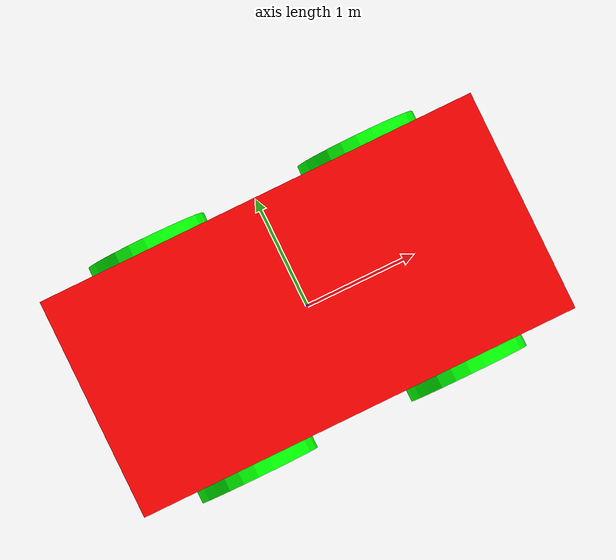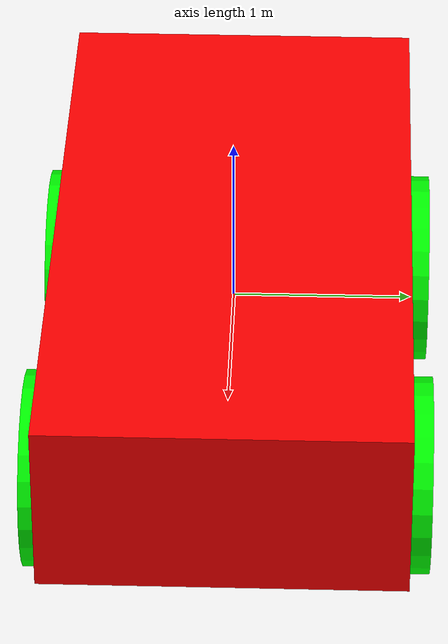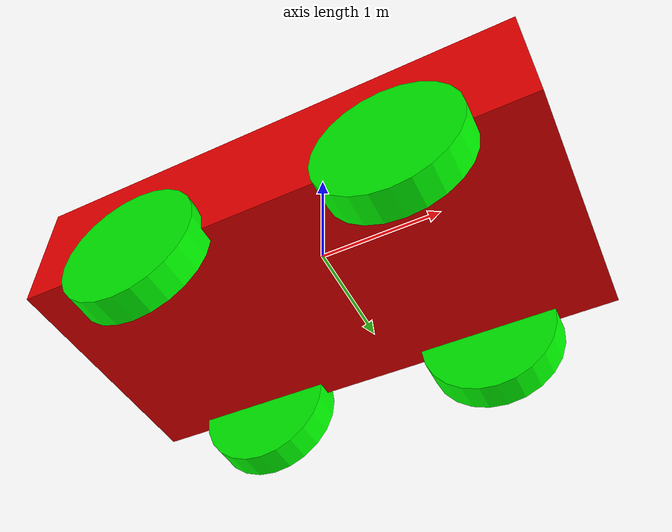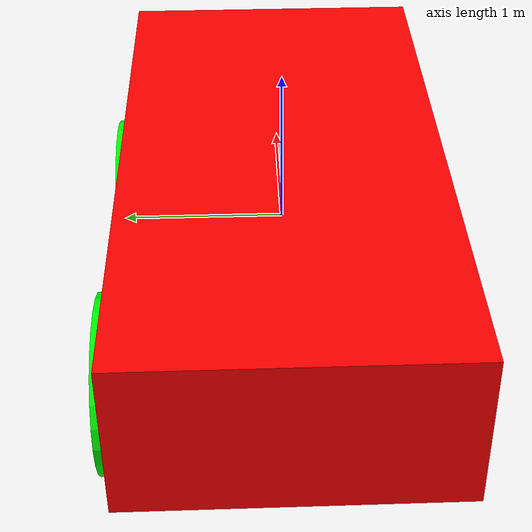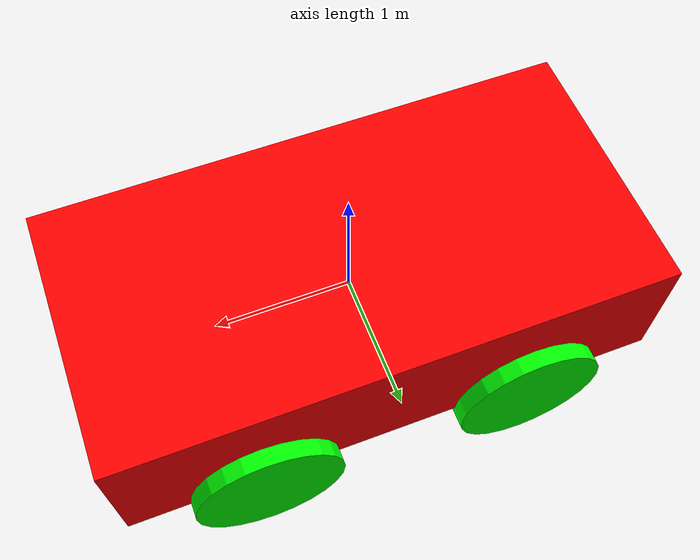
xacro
<?xml version="1.0"?>
<robot xmlns:xacro="http://www.ros.org/wiki/xacro">

    <xacro:include filename="inertial_macros.xacro"/>
    <material name="red">
        <color rgba="1 0.0 0.0 1.0"/>
    </material>

    <material name="green">
        <color rgba="0.0 1.0 0.0 1.0"/>
    </material>

    <material name="blue">
        <color rgba="0.0 0.0 1.0 1.0"/>
    </material>

    <material name="white">
        <color rgba="1.0 1.0 1.0 1.0"/>
    </material>

    <material name="black">
        <color rgba="0.0 0.0 0.0 1.0"/>
    </material>

    <link name="base_link">
        <visual>
            <origin xyz="0.0 0.0 0.0" rpy="0.0 0.0 0.0"/>
            <geometry>
                <box size="4 2 1"/>
            </geometry>
            <material name="red"/>
        </visual>
        <collision>
            <origin xyz="0.0 0.0 0.0" rpy="0.0 0.0 0.0"/>
            <geometry>
                <box size="4 2 1"/>
            </geometry>
        </collision>
        <xacro:inertial_box mass="40" x="4" y="2" z="1" >
            <origin xyz="0.0 0.0 0.0" rpy="0.0 0.0 0.0"/>
        </xacro:inertial_box>
    </link>
    <gazebo reference="base_link">
        <material>Gazebo/Red</material>
    </gazebo>

<!-- Front Left Wheel -->
    <link name="front_left_wheel_link">
        <visual>
            <origin xyz="0.0 0.0 0.0" rpy="0.0 0.0 0.0"/>
            <geometry>
                <cylinder radius="0.55" length="0.25"/>
            </geometry>
            <material name="green"/>
        </visual>
        <collision>
            <origin xyz="0.0 0.0 0.0" rpy="0.0 0.0 0.0"/>
            <geometry>
                <cylinder radius="0.55" length="0.25"/>
            </geometry>
        </collision>
        <xacro:inertial_cylinder mass="4" radius="0.55" length="0.25">
            <origin xyz="0.0 0.0 0.0" rpy="0.0 0.0 0.0"/>
        </xacro:inertial_cylinder>
    </link>
    <gazebo reference="front_left_wheel_link">
        <material>Gazebo/Green</material>
    </gazebo>

    <joint name="front_left_wheel_joint" type="continuous">
        <origin xyz="1.0 1.0 -0.5" rpy="1.5707 0.0 0.0"/>
        <parent link="base_link"/>
        <child link="front_left_wheel_link"/>
        <axis xyz="0.0 0.0 -1.0"/>
    </joint>

<!-- Front right Wheel -->
    <link name="front_right_wheel_link">
        <visual>
            <origin xyz="0.0 0.0 0.0" rpy="0.0 0.0 0.0"/>
            <geometry>
                <cylinder radius="0.55" length="0.25"/>
            </geometry>
            <material name="green"/>
        </visual>
        <collision>
            <origin xyz="0.0 0.0 0.0" rpy="0.0 0.0 0.0"/>
            <geometry>
                <cylinder radius="0.55" length="0.25"/>
            </geometry>
        </collision>
        <xacro:inertial_cylinder mass="4" radius="0.55" length="0.25">
            <origin xyz="0.0 0.0 0.0" rpy="0.0 0.0 0.0"/>
        </xacro:inertial_cylinder>
    </link>
    <gazebo reference="front_right_wheel_link">
        <material>Gazebo/Green</material>
    </gazebo>

    <joint name="front_right_wheel_joint" type="continuous">
        <origin xyz="1.0 -1.0 -0.5" rpy="-1.5707 0.0 0.0"/>
        <parent link="base_link"/>
        <child link="front_right_wheel_link"/>
        <axis xyz="0.0 0.0 1.0"/>
    </joint>

<!-- Front Left Wheel -->
    <link name="rear_left_wheel_link">
        <visual>
            <origin xyz="0.0 0.0 0.0" rpy="0.0 0.0 0.0"/>
            <geometry>
                <cylinder radius="0.55" length="0.25"/>
            </geometry>
            <material name="green"/>
        </visual>
        <collision>
            <origin xyz="0.0 0.0 0.0" rpy="0.0 0.0 0.0"/>
            <geometry>
                <cylinder radius="0.55" length="0.25"/>
            </geometry>
        </collision>
        <xacro:inertial_cylinder mass="4" radius="0.55" length="0.25">
            <origin xyz="0.0 0.0 0.0" rpy="0.0 0.0 0.0"/>
        </xacro:inertial_cylinder>
    </link>
    <gazebo reference="rear_left_wheel_link">
        <material>Gazebo/Green</material>
    </gazebo>

    <joint name="rear_left_wheel_joint" type="continuous">
        <origin xyz="-1.0 1.0 -0.5" rpy="1.5707 0.0 0.0"/>
        <parent link="base_link"/>
        <child link="rear_left_wheel_link"/>
        <axis xyz="0.0 0.0 -1.0"/>
    </joint>

<!-- Rear right Wheel -->
    <link name="rear_right_wheel_link">
        <visual>
            <origin xyz="0.0 0.0 0.0" rpy="0.0 0.0 0.0"/>
            <geometry>
                <cylinder radius="0.55" length="0.25"/>
            </geometry>
            <material name="green"/>
        </visual>
        <collision>
            <origin xyz="0.0 0.0 0.0" rpy="0.0 0.0 0.0"/>
            <geometry>
                <cylinder radius="0.55" length="0.25"/>
            </geometry>
        </collision>
        <xacro:inertial_cylinder mass="4" radius="0.55" length="0.25">
            <origin xyz="0.0 0.0 0.0" rpy="0.0 0.0 0.0"/>
        </xacro:inertial_cylinder>
    </link>
    <gazebo reference="rear_right_wheel_link">
        <material>Gazebo/Green</material>
    </gazebo>

    <joint name="rear_right_wheel_joint" type="continuous">
        <origin xyz="-1.0 -1.0 -0.5" rpy="-1.5707 0.0 0.0"/>
        <parent link="base_link"/>
        <child link="rear_right_wheel_link"/>
        <axis xyz="0.0 0.0 1.0"/>
    </joint>

</robot>
